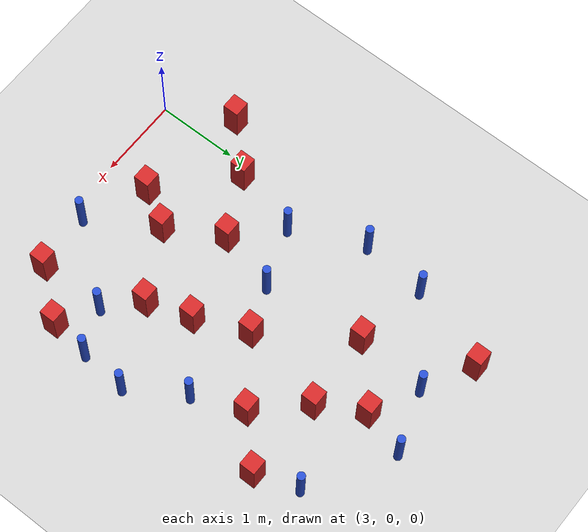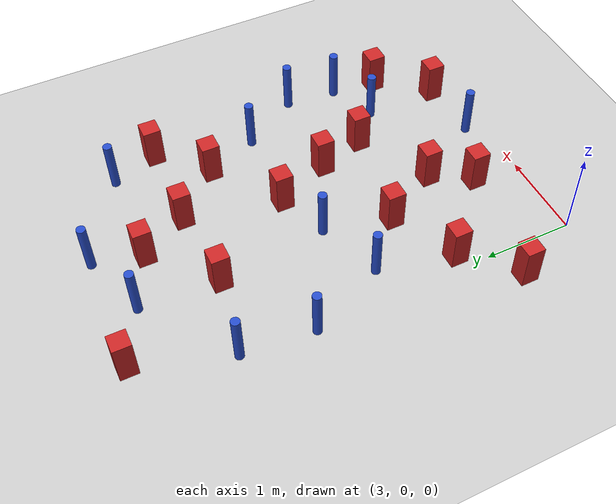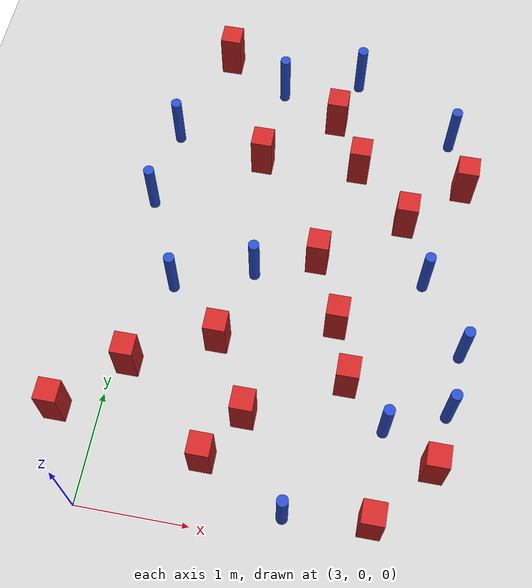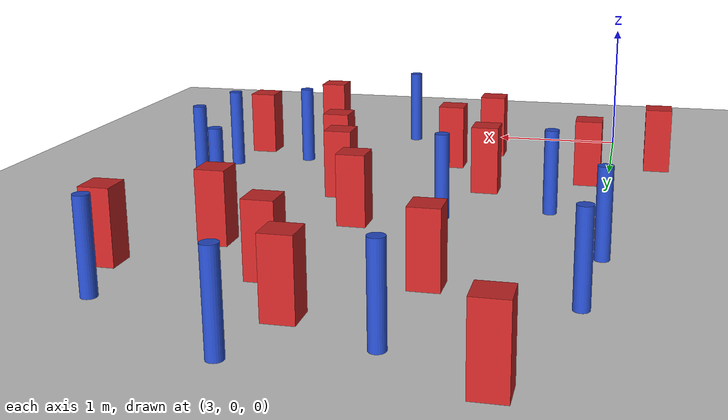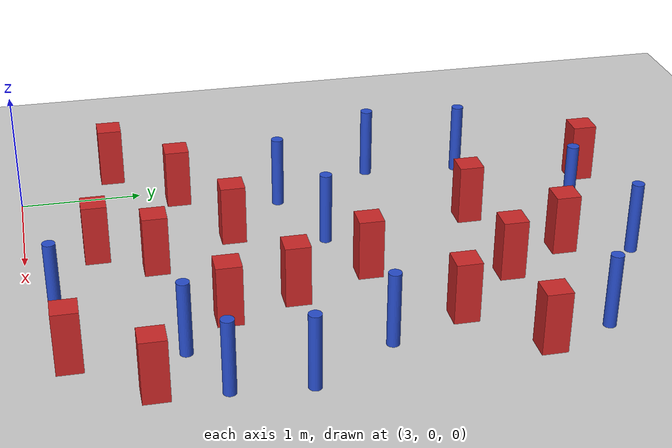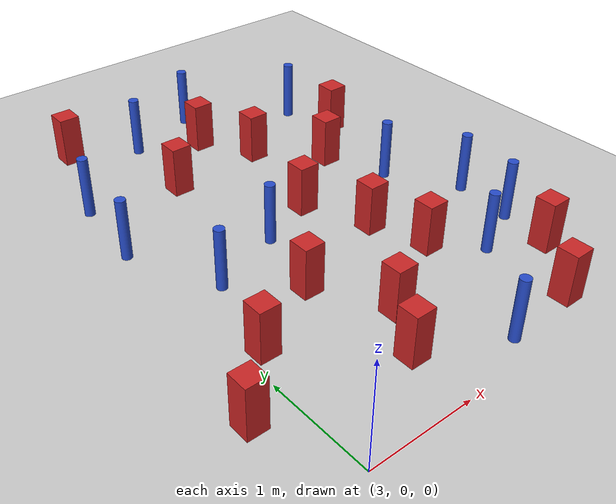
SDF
<sdf version="1.6">
 <world name="default">
  <model name="ground_plane">
   <static>1</static>
   <link name="link">
    <collision name="collision">
     <geometry><plane><normal>0 0 1</normal><size>100 100</size></plane></geometry>
     <surface><friction><ode><mu>100</mu><mu2>50</mu2></ode></friction></surface>
    </collision>
    <visual name="visual">
     <cast_shadows>0</cast_shadows>
     <geometry><plane><normal>0 0 1</normal><size>100 100</size></plane></geometry>
     <material>
      <ambient>1.0 1.0 1.0 1.0</ambient>
      <diffuse>0.8 0.8 0.8 1.0</diffuse>
      <specular>0.01 0.01 0.01 1.000000</specular>
     </material>
    </visual>
   </link>
  </model>
  <model name="square_post_obstacle3">
   <static>true</static>
   <pose>3.39269414633 4.85101991493 1.91545236811e-07 -7.35059704564e-06 1.12565212e-07 2.39332434364e-05</pose>
   <link name="link">
    <pose>0 0 0.25 0 -0 0</pose>
    <inertial>
     <mass>100</mass>
     <inertia>
      <ixx>0.166667</ixx>
      <ixy>0</ixy>
      <ixz>0</ixz>
      <iyy>0.166667</iyy>
      <iyz>0</iyz>
      <izz>0.166667</izz>
     </inertia>
    </inertial>
    <collision name="collision"><geometry><box><size>.2 .2 .5</size></box></geometry></collision>
    <visual name="visual">
     <geometry><box><size>.2 .2 .5</size></box></geometry>
     <material>
      <script><name>Gazebo/Red</name><uri>file://media/materials/scripts/gazebo.material</uri></script>
     </material>
    </visual>
   </link>
  </model>
  <model name="pole_obstacle7">
   <static>true</static>
   <pose>3.04893697726 3.82194776182 7.38925637345e-09 -8.47170692798e-08 1.24976764939e-08 -1.74513093025e-07</pose>
   <link name="link">
    <pose>0 0 0.3 0 -0 0</pose>
    <inertial>
     <mass>1</mass>
     <inertia><ixx>0.145833</ixx><ixy>0</ixy><ixz>0</ixz><iyy>0.145833</iyy><iyz>0</iyz><izz>0.125</izz></inertia>
    </inertial>
    <collision name="collision">
     <geometry><cylinder><radius>0.05</radius><length>.6</length></cylinder></geometry>
    </collision>
    <visual name="visual">
     <geometry><cylinder><radius>0.05</radius><length>.6</length></cylinder></geometry>
     <material>
      <script><name>Gazebo/Blue</name><uri>file://media/materials/scripts/gazebo.material</uri></script>
     </material>
    </visual>
   </link>
  </model>
  <model name="square_post_obstacle23">
   <static>true</static>
   <pose>3.93727904672 3.65878601379 1.91545236811e-07 -7.35059704564e-06 1.12565212e-07 2.39332434364e-05</pose>
   <link name="link">
    <pose>0 0 0.25 0 -0 0</pose>
    <inertial>
     <mass>100</mass>
     <inertia>
      <ixx>0.166667</ixx>
      <ixy>0</ixy>
      <ixz>0</ixz>
      <iyy>0.166667</iyy>
      <iyz>0</iyz>
      <izz>0.166667</izz>
     </inertia>
    </inertial>
    <collision name="collision"><geometry><box><size>.2 .2 .5</size></box></geometry></collision>
    <visual name="visual">
     <geometry><box><size>.2 .2 .5</size></box></geometry>
     <material>
      <script><name>Gazebo/Red</name><uri>file://media/materials/scripts/gazebo.material</uri></script>
     </material>
    </visual>
   </link>
  </model>
  <model name="square_post_obstacle30">
   <static>true</static>
   <pose>4.59109555486 4.25223819643 1.91545236811e-07 -7.35059704564e-06 1.12565212e-07 2.39332434364e-05</pose>
   <link name="link">
    <pose>0 0 0.25 0 -0 0</pose>
    <inertial>
     <mass>100</mass>
     <inertia>
      <ixx>0.166667</ixx>
      <ixy>0</ixy>
      <ixz>0</ixz>
      <iyy>0.166667</iyy>
      <iyz>0</iyz>
      <izz>0.166667</izz>
     </inertia>
    </inertial>
    <collision name="collision"><geometry><box><size>.2 .2 .5</size></box></geometry></collision>
    <visual name="visual">
     <geometry><box><size>.2 .2 .5</size></box></geometry>
     <material>
      <script><name>Gazebo/Red</name><uri>file://media/materials/scripts/gazebo.material</uri></script>
     </material>
    </visual>
   </link>
  </model>
  <model name="pole_obstacle21">
   <static>true</static>
   <pose>3.37043640496 2.15173362106 7.38925637345e-09 -8.47170692798e-08 1.24976764939e-08 -1.74513093025e-07</pose>
   <link name="link">
    <pose>0 0 0.3 0 -0 0</pose>
    <inertial>
     <mass>1</mass>
     <inertia><ixx>0.145833</ixx><ixy>0</ixy><ixz>0</ixz><iyy>0.145833</iyy><iyz>0</iyz><izz>0.125</izz></inertia>
    </inertial>
    <collision name="collision">
     <geometry><cylinder><radius>0.05</radius><length>.6</length></cylinder></geometry>
    </collision>
    <visual name="visual">
     <geometry><cylinder><radius>0.05</radius><length>.6</length></cylinder></geometry>
     <material>
      <script><name>Gazebo/Blue</name><uri>file://media/materials/scripts/gazebo.material</uri></script>
     </material>
    </visual>
   </link>
  </model>
  <model name="square_post_obstacle46">
   <static>true</static>
   <pose>5.93546276615 0.833515930917 1.91545236811e-07 -7.35059704564e-06 1.12565212e-07 2.39332434364e-05</pose>
   <link name="link">
    <pose>0 0 0.25 0 -0 0</pose>
    <inertial>
     <mass>100</mass>
     <inertia>
      <ixx>0.166667</ixx>
      <ixy>0</ixy>
      <ixz>0</ixz>
      <iyy>0.166667</iyy>
      <iyz>0</iyz>
      <izz>0.166667</izz>
     </inertia>
    </inertial>
    <collision name="collision"><geometry><box><size>.2 .2 .5</size></box></geometry></collision>
    <visual name="visual">
     <geometry><box><size>.2 .2 .5</size></box></geometry>
     <material>
      <script><name>Gazebo/Red</name><uri>file://media/materials/scripts/gazebo.material</uri></script>
     </material>
    </visual>
   </link>
  </model>
  <model name="pole_obstacle49">
   <static>true</static>
   <pose>5.48091124922 1.10294031606 7.38925637345e-09 -8.471706928e-08 1.24976765134e-08 -1.74513093015e-07</pose>
   <link name="link">
    <pose>0 0 0.3 0 -0 0</pose>
    <inertial>
     <mass>1</mass>
     <inertia><ixx>0.145833</ixx><ixy>0</ixy><ixz>0</ixz><iyy>0.145833</iyy><iyz>0</iyz><izz>0.125</izz></inertia>
    </inertial>
    <collision name="collision">
     <geometry><cylinder><radius>0.05</radius><length>.6</length></cylinder></geometry>
    </collision>
    <visual name="visual">
     <geometry><cylinder><radius>0.05</radius><length>.6</length></cylinder></geometry>
     <material>
      <script><name>Gazebo/Blue</name><uri>file://media/materials/scripts/gazebo.material</uri></script>
     </material>
    </visual>
   </link>
  </model>
  <model name="pole_obstacle53">
   <static>true</static>
   <pose>5.75095059479 4.20559724311 7.38925637345e-09 -8.47170692796e-08 1.24976764786e-08 -1.74513093032e-07</pose>
   <link name="link">
    <pose>0 0 0.3 0 -0 0</pose>
    <inertial>
     <mass>1</mass>
     <inertia><ixx>0.145833</ixx><ixy>0</ixy><ixz>0</ixz><iyy>0.145833</iyy><iyz>0</iyz><izz>0.125</izz></inertia>
    </inertial>
    <collision name="collision">
     <geometry><cylinder><radius>0.05</radius><length>.6</length></cylinder></geometry>
    </collision>
    <visual name="visual">
     <geometry><cylinder><radius>0.05</radius><length>.6</length></cylinder></geometry>
     <material>
      <script><name>Gazebo/Blue</name><uri>file://media/materials/scripts/gazebo.material</uri></script>
     </material>
    </visual>
   </link>
  </model>
  <model name="pole_obstacle54">
   <static>true</static>
   <pose>4.74827124884 0.211581626598 7.38925637345e-09 -8.471706928e-08 1.24976765136e-08 -1.74513093014e-07</pose>
   <link name="link">
    <pose>0 0 0.3 0 -0 0</pose>
    <inertial>
     <mass>1</mass>
     <inertia><ixx>0.145833</ixx><ixy>0</ixy><ixz>0</ixz><iyy>0.145833</iyy><iyz>0</iyz><izz>0.125</izz></inertia>
    </inertial>
    <collision name="collision">
     <geometry><cylinder><radius>0.05</radius><length>.6</length></cylinder></geometry>
    </collision>
    <visual name="visual">
     <geometry><cylinder><radius>0.05</radius><length>.6</length></cylinder></geometry>
     <material>
      <script><name>Gazebo/Blue</name><uri>file://media/materials/scripts/gazebo.material</uri></script>
     </material>
    </visual>
   </link>
  </model>
  <model name="square_post_obstacle97">
   <static>true</static>
   <pose>4.89265047885 3.71552252274 1.91545236811e-07 -7.35059704564e-06 1.12565212e-07 2.39332434364e-05</pose>
   <link name="link">
    <pose>0 0 0.25 0 -0 0</pose>
    <inertial>
     <mass>100</mass>
     <inertia>
      <ixx>0.166667</ixx>
      <ixy>0</ixy>
      <ixz>0</ixz>
      <iyy>0.166667</iyy>
      <iyz>0</iyz>
      <izz>0.166667</izz>
     </inertia>
    </inertial>
    <collision name="collision"><geometry><box><size>.2 .2 .5</size></box></geometry></collision>
    <visual name="visual">
     <geometry><box><size>.2 .2 .5</size></box></geometry>
     <material>
      <script><name>Gazebo/Red</name><uri>file://media/materials/scripts/gazebo.material</uri></script>
     </material>
    </visual>
   </link>
  </model>
  <model name="square_post_obstacle98">
   <static>true</static>
   <pose>3.1556546642 1.31788239723 1.91545236811e-07 -7.35059704564e-06 1.12565212e-07 2.39332434364e-05</pose>
   <link name="link">
    <pose>0 0 0.25 0 -0 0</pose>
    <inertial>
     <mass>100</mass>
     <inertia>
      <ixx>0.166667</ixx>
      <ixy>0</ixy>
      <ixz>0</ixz>
      <iyy>0.166667</iyy>
      <iyz>0</iyz>
      <izz>0.166667</izz>
     </inertia>
    </inertial>
    <collision name="collision"><geometry><box><size>.2 .2 .5</size></box></geometry></collision>
    <visual name="visual">
     <geometry><box><size>.2 .2 .5</size></box></geometry>
     <material>
      <script><name>Gazebo/Red</name><uri>file://media/materials/scripts/gazebo.material</uri></script>
     </material>
    </visual>
   </link>
  </model>
  <model name="pole_obstacle125">
   <static>true</static>
   <pose>2.97301047857 3.01708872154 7.38925637345e-09 -8.47170692798e-08 1.24976764939e-08 -1.74513093025e-07</pose>
   <link name="link">
    <pose>0 0 0.3 0 -0 0</pose>
    <inertial>
     <mass>1</mass>
     <inertia><ixx>0.145833</ixx><ixy>0</ixy><ixz>0</ixz><iyy>0.145833</iyy><iyz>0</iyz><izz>0.125</izz></inertia>
    </inertial>
    <collision name="collision">
     <geometry><cylinder><radius>0.05</radius><length>.6</length></cylinder></geometry>
    </collision>
    <visual name="visual">
     <geometry><cylinder><radius>0.05</radius><length>.6</length></cylinder></geometry>
     <material>
      <script><name>Gazebo/Blue</name><uri>file://media/materials/scripts/gazebo.material</uri></script>
     </material>
    </visual>
   </link>
  </model>
  <model name="pole_obstacle129">
   <static>true</static>
   <pose>6.06992764632 1.92157409443 7.38925637345e-09 -8.471706928e-08 1.24976765134e-08 -1.74513093015e-07</pose>
   <link name="link">
    <pose>0 0 0.3 0 -0 0</pose>
    <inertial>
     <mass>1</mass>
     <inertia><ixx>0.145833</ixx><ixy>0</ixy><ixz>0</ixz><iyy>0.145833</iyy><iyz>0</iyz><izz>0.125</izz></inertia>
    </inertial>
    <collision name="collision">
     <geometry><cylinder><radius>0.05</radius><length>.6</length></cylinder></geometry>
    </collision>
    <visual name="visual">
     <geometry><cylinder><radius>0.05</radius><length>.6</length></cylinder></geometry>
     <material>
      <script><name>Gazebo/Blue</name><uri>file://media/materials/scripts/gazebo.material</uri></script>
     </material>
    </visual>
   </link>
  </model>
  <model name="square_post_obstacle119">
   <static>true</static>
   <pose>5.92905910365 3.68125669373 1.91545236811e-07 -7.35059704564e-06 1.12565212e-07 2.39332434364e-05</pose>
   <link name="link">
    <pose>0 0 0.25 0 -0 0</pose>
    <inertial>
     <mass>100</mass>
     <inertia>
      <ixx>0.166667</ixx>
      <ixy>0</ixy>
      <ixz>0</ixz>
      <iyy>0.166667</iyy>
      <iyz>0</iyz>
      <izz>0.166667</izz>
     </inertia>
    </inertial>
    <collision name="collision"><geometry><box><size>.2 .2 .5</size></box></geometry></collision>
    <visual name="visual">
     <geometry><box><size>.2 .2 .5</size></box></geometry>
     <material>
      <script><name>Gazebo/Red</name><uri>file://media/materials/scripts/gazebo.material</uri></script>
     </material>
    </visual>
   </link>
  </model>
  <model name="square_post_obstacle124">
   <static>true</static>
   <pose>5.09976439391 1.46765656507 1.91545236811e-07 -7.35059704564e-06 1.12565212e-07 2.39332434364e-05</pose>
   <link name="link">
    <pose>0 0 0.25 0 -0 0</pose>
    <inertial>
     <mass>100</mass>
     <inertia>
      <ixx>0.166667</ixx>
      <ixy>0</ixy>
      <ixz>0</ixz>
      <iyy>0.166667</iyy>
      <iyz>0</iyz>
      <izz>0.166667</izz>
     </inertia>
    </inertial>
    <collision name="collision"><geometry><box><size>.2 .2 .5</size></box></geometry></collision>
    <visual name="visual">
     <geometry><box><size>.2 .2 .5</size></box></geometry>
     <material>
      <script><name>Gazebo/Red</name><uri>file://media/materials/scripts/gazebo.material</uri></script>
     </material>
    </visual>
   </link>
  </model>
  <model name="square_post_obstacle128">
   <static>true</static>
   <pose>5.41319225245 3.18257327118 1.91545236811e-07 -7.35059704564e-06 1.12565212e-07 2.39332434364e-05</pose>
   <link name="link">
    <pose>0 0 0.25 0 -0 0</pose>
    <inertial>
     <mass>100</mass>
     <inertia>
      <ixx>0.166667</ixx>
      <ixy>0</ixy>
      <ixz>0</ixz>
      <iyy>0.166667</iyy>
      <iyz>0</iyz>
      <izz>0.166667</izz>
     </inertia>
    </inertial>
    <collision name="collision"><geometry><box><size>.2 .2 .5</size></box></geometry></collision>
    <visual name="visual">
     <geometry><box><size>.2 .2 .5</size></box></geometry>
     <material>
      <script><name>Gazebo/Red</name><uri>file://media/materials/scripts/gazebo.material</uri></script>
     </material>
    </visual>
   </link>
  </model>
  <model name="square_post_obstacle131">
   <static>true</static>
   <pose>4.26537304499 1.01611656891 1.91545236811e-07 -7.35059704564e-06 1.12565212e-07 2.39332434364e-05</pose>
   <link name="link">
    <pose>0 0 0.25 0 -0 0</pose>
    <inertial>
     <mass>100</mass>
     <inertia>
      <ixx>0.166667</ixx>
      <ixy>0</ixy>
      <ixz>0</ixz>
      <iyy>0.166667</iyy>
      <iyz>0</iyz>
      <izz>0.166667</izz>
     </inertia>
    </inertial>
    <collision name="collision"><geometry><box><size>.2 .2 .5</size></box></geometry></collision>
    <visual name="visual">
     <geometry><box><size>.2 .2 .5</size></box></geometry>
     <material>
      <script><name>Gazebo/Red</name><uri>file://media/materials/scripts/gazebo.material</uri></script>
     </material>
    </visual>
   </link>
  </model>
  <model name="pole_obstacle145">
   <static>true</static>
   <pose>5.66416612427 2.57891257541 7.38925637345e-09 -8.47170692798e-08 1.24976764937e-08 -1.74513093023e-07</pose>
   <link name="link">
    <pose>0 0 0.3 0 -0 0</pose>
    <inertial>
     <mass>1</mass>
     <inertia><ixx>0.145833</ixx><ixy>0</ixy><ixz>0</ixz><iyy>0.145833</iyy><iyz>0</iyz><izz>0.125</izz></inertia>
    </inertial>
    <collision name="collision">
     <geometry><cylinder><radius>0.05</radius><length>.6</length></cylinder></geometry>
    </collision>
    <visual name="visual">
     <geometry><cylinder><radius>0.05</radius><length>.6</length></cylinder></geometry>
     <material>
      <script><name>Gazebo/Blue</name><uri>file://media/materials/scripts/gazebo.material</uri></script>
     </material>
    </visual>
   </link>
  </model>
  <model name="square_post_obstacle142">
   <static>true</static>
   <pose>3.99284052215 0.57163998861 1.91545236811e-07 -7.35059704564e-06 1.12565212e-07 2.39332434364e-05</pose>
   <link name="link">
    <pose>0 0 0.25 0 -0 0</pose>
    <inertial>
     <mass>100</mass>
     <inertia>
      <ixx>0.166667</ixx>
      <ixy>0</ixy>
      <ixz>0</ixz>
      <iyy>0.166667</iyy>
      <iyz>0</iyz>
      <izz>0.166667</izz>
     </inertia>
    </inertial>
    <collision name="collision"><geometry><box><size>.2 .2 .5</size></box></geometry></collision>
    <visual name="visual">
     <geometry><box><size>.2 .2 .5</size></box></geometry>
     <material>
      <script><name>Gazebo/Red</name><uri>file://media/materials/scripts/gazebo.material</uri></script>
     </material>
    </visual>
   </link>
  </model>
  <model name="square_post_obstacle146">
   <static>true</static>
   <pose>3.89326363849 1.68022036585 1.91545236811e-07 -7.35059704564e-06 1.12565212e-07 2.39332434364e-05</pose>
   <link name="link">
    <pose>0 0 0.25 0 -0 0</pose>
    <inertial>
     <mass>100</mass>
     <inertia>
      <ixx>0.166667</ixx>
      <ixy>0</ixy>
      <ixz>0</ixz>
      <iyy>0.166667</iyy>
      <iyz>0</iyz>
      <izz>0.166667</izz>
     </inertia>
    </inertial>
    <collision name="collision"><geometry><box><size>.2 .2 .5</size></box></geometry></collision>
    <visual name="visual">
     <geometry><box><size>.2 .2 .5</size></box></geometry>
     <material>
      <script><name>Gazebo/Red</name><uri>file://media/materials/scripts/gazebo.material</uri></script>
     </material>
    </visual>
   </link>
  </model>
  <model name="square_post_obstacle148">
   <static>true</static>
   <pose>2.6325285896 0.793880602044 1.91545236811e-07 -7.35059704564e-06 1.12565212e-07 2.39332434364e-05</pose>
   <link name="link">
    <pose>0 0 0.25 0 -0 0</pose>
    <inertial>
     <mass>100</mass>
     <inertia>
      <ixx>0.166667</ixx>
      <ixy>0</ixy>
      <ixz>0</ixz>
      <iyy>0.166667</iyy>
      <iyz>0</iyz>
      <izz>0.166667</izz>
     </inertia>
    </inertial>
    <collision name="collision"><geometry><box><size>.2 .2 .5</size></box></geometry></collision>
    <visual name="visual">
     <geometry><box><size>.2 .2 .5</size></box></geometry>
     <material>
      <script><name>Gazebo/Red</name><uri>file://media/materials/scripts/gazebo.material</uri></script>
     </material>
    </visual>
   </link>
  </model>
  <model name="pole_obstacle170">
   <static>true</static>
   <pose>4.08973850944 2.41609732211 7.38925637345e-09 -8.47170692798e-08 1.24976764937e-08 -1.74513093023e-07</pose>
   <link name="link">
    <pose>0 0 0.3 0 -0 0</pose>
    <inertial>
     <mass>1</mass>
     <inertia><ixx>0.145833</ixx><ixy>0</ixy><ixz>0</ixz><iyy>0.145833</iyy><iyz>0</iyz><izz>0.125</izz></inertia>
    </inertial>
    <collision name="collision">
     <geometry><cylinder><radius>0.05</radius><length>.6</length></cylinder></geometry>
    </collision>
    <visual name="visual">
     <geometry><cylinder><radius>0.05</radius><length>.6</length></cylinder></geometry>
     <material>
      <script><name>Gazebo/Blue</name><uri>file://media/materials/scripts/gazebo.material</uri></script>
     </material>
    </visual>
   </link>
  </model>
  <model name="pole_obstacle187">
   <static>true</static>
   <pose>4.00444737899 4.53480388608 7.38925637345e-09 -8.47170692796e-08 1.24976764793e-08 -1.74513093032e-07</pose>
   <link name="link">
    <pose>0 0 0.3 0 -0 0</pose>
    <inertial>
     <mass>1</mass>
     <inertia><ixx>0.145833</ixx><ixy>0</ixy><ixz>0</ixz><iyy>0.145833</iyy><iyz>0</iyz><izz>0.125</izz></inertia>
    </inertial>
    <collision name="collision">
     <geometry><cylinder><radius>0.05</radius><length>.6</length></cylinder></geometry>
    </collision>
    <visual name="visual">
     <geometry><cylinder><radius>0.05</radius><length>.6</length></cylinder></geometry>
     <material>
      <script><name>Gazebo/Blue</name><uri>file://media/materials/scripts/gazebo.material</uri></script>
     </material>
    </visual>
   </link>
  </model>
  <model name="square_post_obstacle197">
   <static>true</static>
   <pose>4.92701363904 2.01002847384 1.91545236811e-07 -7.35059704564e-06 1.12565212e-07 2.39332434364e-05</pose>
   <link name="link">
    <pose>0 0 0.25 0 -0 0</pose>
    <inertial>
     <mass>100</mass>
     <inertia>
      <ixx>0.166667</ixx>
      <ixy>0</ixy>
      <ixz>0</ixz>
      <iyy>0.166667</iyy>
      <iyz>0</iyz>
      <izz>0.166667</izz>
     </inertia>
    </inertial>
    <collision name="collision"><geometry><box><size>.2 .2 .5</size></box></geometry></collision>
    <visual name="visual">
     <geometry><box><size>.2 .2 .5</size></box></geometry>
     <material>
      <script><name>Gazebo/Red</name><uri>file://media/materials/scripts/gazebo.material</uri></script>
     </material>
    </visual>
   </link>
  </model>
  <model name="square_post_obstacle201">
   <static>true</static>
   <pose>4.65144211614 2.63866284139 1.91545236811e-07 -7.35059704564e-06 1.12565212e-07 2.39332434364e-05</pose>
   <link name="link">
    <pose>0 0 0.25 0 -0 0</pose>
    <inertial>
     <mass>100</mass>
     <inertia>
      <ixx>0.166667</ixx>
      <ixy>0</ixy>
      <ixz>0</ixz>
      <iyy>0.166667</iyy>
      <iyz>0</iyz>
      <izz>0.166667</izz>
     </inertia>
    </inertial>
    <collision name="collision"><geometry><box><size>.2 .2 .5</size></box></geometry></collision>
    <visual name="visual">
     <geometry><box><size>.2 .2 .5</size></box></geometry>
     <material>
      <script><name>Gazebo/Red</name><uri>file://media/materials/scripts/gazebo.material</uri></script>
     </material>
    </visual>
   </link>
  </model>
  <model name="square_post_obstacle202">
   <static>true</static>
   <pose>5.47544066183 0.276341708343 1.91545236811e-07 -7.35059704564e-06 1.12565212e-07 2.39332434364e-05</pose>
   <link name="link">
    <pose>0 0 0.25 0 -0 0</pose>
    <inertial>
     <mass>100</mass>
     <inertia>
      <ixx>0.166667</ixx>
      <ixy>0</ixy>
      <ixz>0</ixz>
      <iyy>0.166667</iyy>
      <iyz>0</iyz>
      <izz>0.166667</izz>
     </inertia>
    </inertial>
    <collision name="collision"><geometry><box><size>.2 .2 .5</size></box></geometry></collision>
    <visual name="visual">
     <geometry><box><size>.2 .2 .5</size></box></geometry>
     <material>
      <script><name>Gazebo/Red</name><uri>file://media/materials/scripts/gazebo.material</uri></script>
     </material>
    </visual>
   </link>
  </model>
  <model name="pole_obstacle188">
   <static>true</static>
   <pose>4.75002381229 4.79271017495 7.38925637345e-09 -8.47170692796e-08 1.24976764786e-08 -1.74513093032e-07</pose>
   <link name="link">
    <pose>0 0 0.3 0 -0 0</pose>
    <inertial>
     <mass>1</mass>
     <inertia><ixx>0.145833</ixx><ixy>0</ixy><ixz>0</ixz><iyy>0.145833</iyy><iyz>0</iyz><izz>0.125</izz></inertia>
    </inertial>
    <collision name="collision">
     <geometry><cylinder><radius>0.05</radius><length>.6</length></cylinder></geometry>
    </collision>
    <visual name="visual">
     <geometry><cylinder><radius>0.05</radius><length>.6</length></cylinder></geometry>
     <material>
      <script><name>Gazebo/Blue</name><uri>file://media/materials/scripts/gazebo.material</uri></script>
     </material>
    </visual>
   </link>
  </model>
  <model name="pole_obstacle215">
   <static>true</static>
   <pose>6.01205269417 1.33629586252 7.38925637345e-09 -8.471706928e-08 1.24976765134e-08 -1.74513093015e-07</pose>
   <link name="link">
    <pose>0 0 0.3 0 -0 0</pose>
    <inertial>
     <mass>1</mass>
     <inertia><ixx>0.145833</ixx><ixy>0</ixy><ixz>0</ixz><iyy>0.145833</iyy><iyz>0</iyz><izz>0.125</izz></inertia>
    </inertial>
    <collision name="collision">
     <geometry><cylinder><radius>0.05</radius><length>.6</length></cylinder></geometry>
    </collision>
    <visual name="visual">
     <geometry><cylinder><radius>0.05</radius><length>.6</length></cylinder></geometry>
     <material>
      <script><name>Gazebo/Blue</name><uri>file://media/materials/scripts/gazebo.material</uri></script>
     </material>
    </visual>
   </link>
  </model>
 </world>
</sdf>
